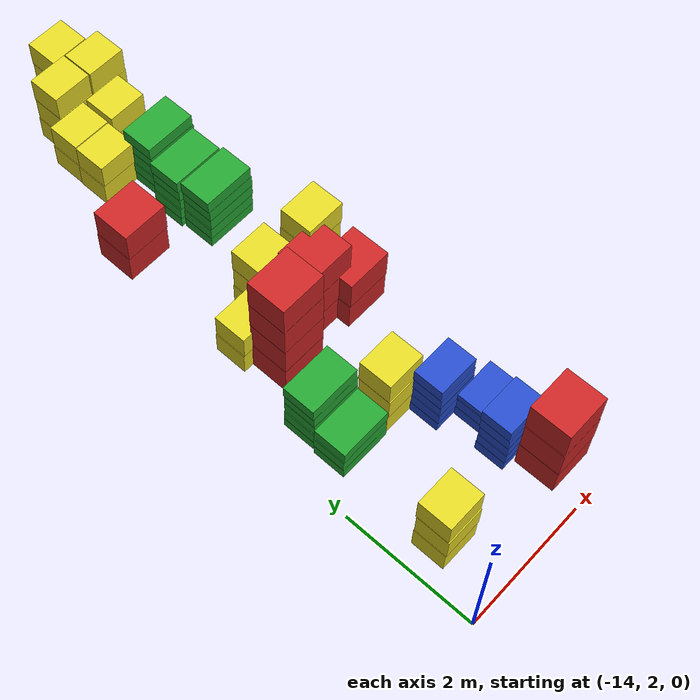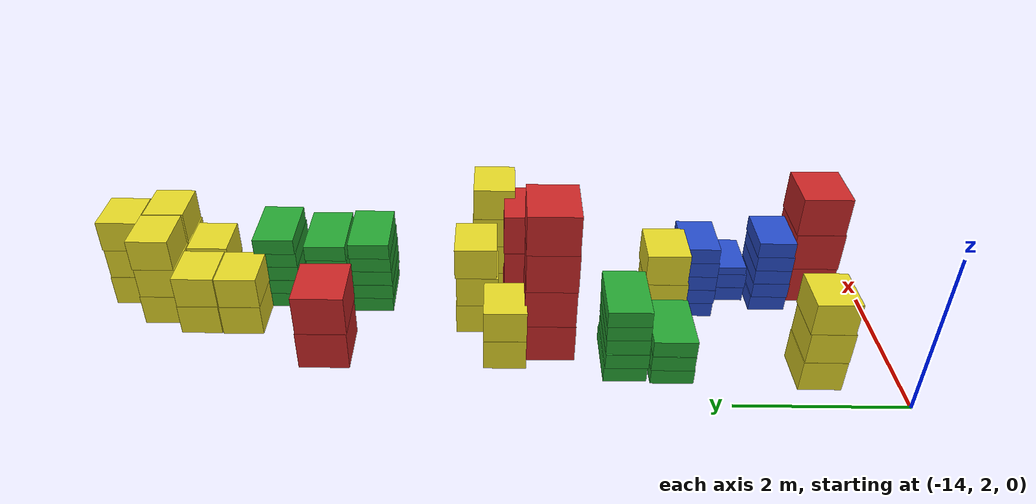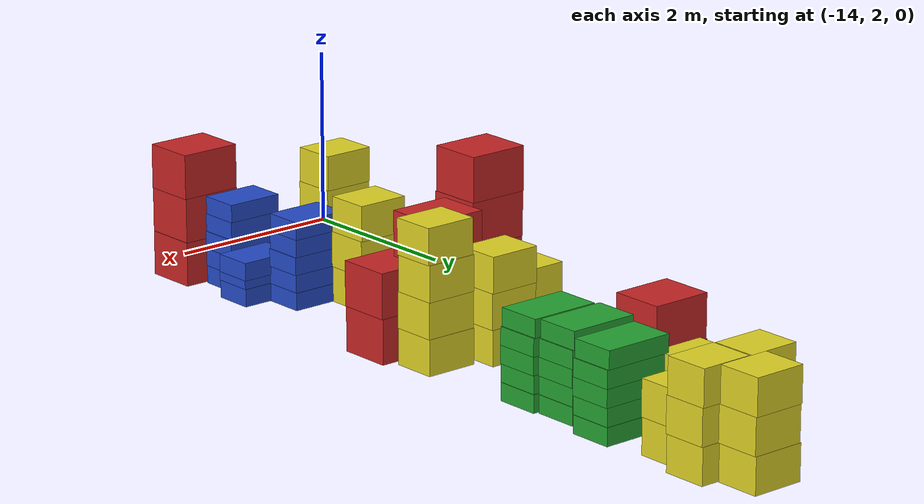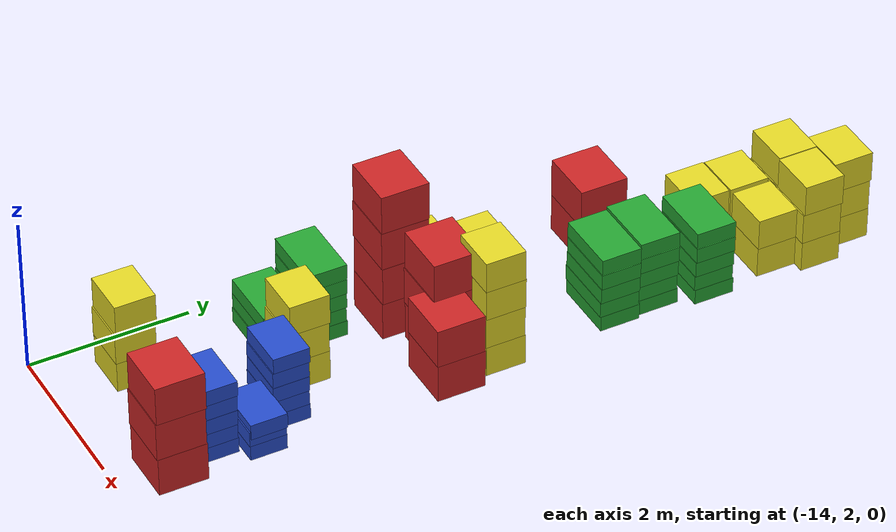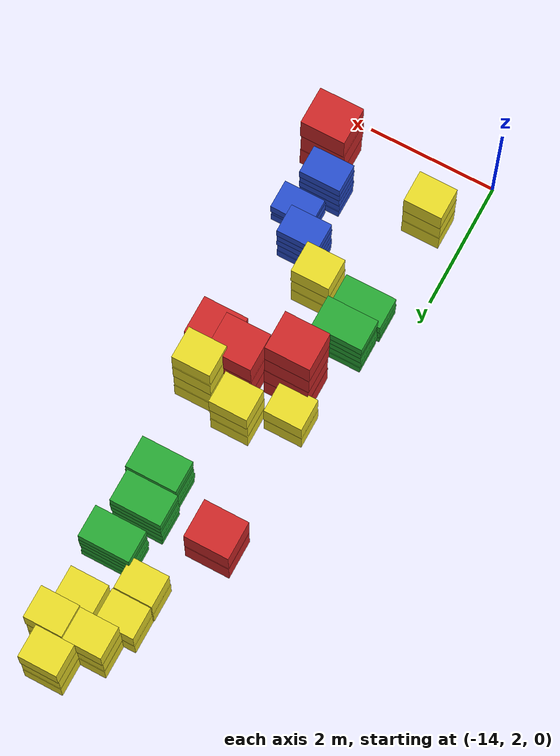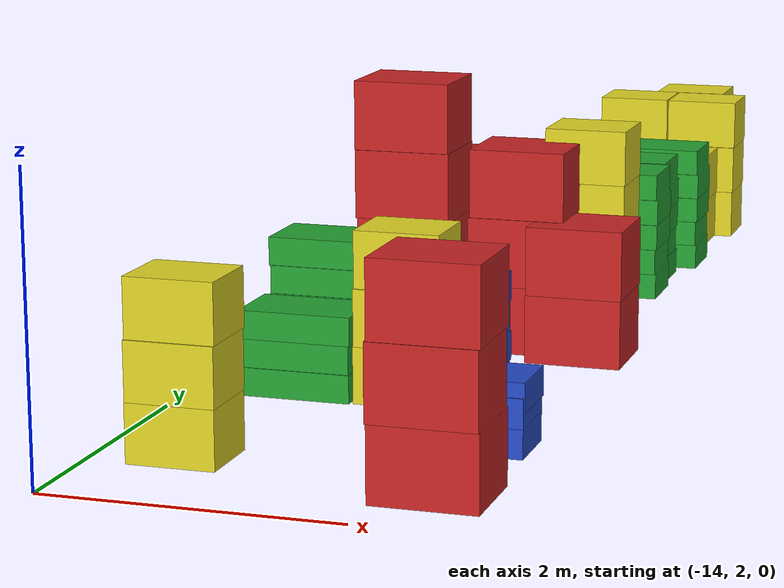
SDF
<sdf version="1.6">
 <world name="default">
  <include><uri>model://sun</uri></include>
  <model name="baggage_A_x3_6">
   <model name="baggage_A_0">
    <static>1</static>
    <link name="link">
     <collision name="collision"><geometry><box><size>0.7 0.6 0.5</size></box></geometry></collision>
     <visual name="visual">
      <geometry><box><size>0.7 0.6 0.5</size></box></geometry>
      <material>
       <script><uri>file://media/materials/scripts/gazebo.material</uri><name>Gazebo/Red</name></script>
      </material>
     </visual>
    </link>
    <pose>0 0 0.25 0 -0 0</pose>
   </model>
   <model name="baggage_A_1">
    <static>1</static>
    <link name="link">
     <collision name="collision"><geometry><box><size>0.7 0.6 0.5</size></box></geometry></collision>
     <visual name="visual">
      <geometry><box><size>0.7 0.6 0.5</size></box></geometry>
      <material>
       <script><uri>file://media/materials/scripts/gazebo.material</uri><name>Gazebo/Red</name></script>
      </material>
     </visual>
    </link>
    <pose>-0.006 -0.0077 0.75 0 -0 0</pose>
   </model>
   <model name="baggage_A_2">
    <static>1</static>
    <link name="link">
     <collision name="collision"><geometry><box><size>0.7 0.6 0.5</size></box></geometry></collision>
     <visual name="visual">
      <geometry><box><size>0.7 0.6 0.5</size></box></geometry>
      <material>
       <script><uri>file://media/materials/scripts/gazebo.material</uri><name>Gazebo/Red</name></script>
      </material>
     </visual>
    </link>
    <pose>0.0045 0.0005 1.25 0 -0 0</pose>
   </model>
   <pose>-11.6674 2.65733 0 0 -0 0</pose>
  </model>
  <model name="baggage_C_x3_3">
   <model name="baggage_C_0">
    <static>1</static>
    <link name="link">
     <collision name="collision"><geometry><box><size>0.6 0.5 0.4</size></box></geometry></collision>
     <visual name="visual">
      <geometry><box><size>0.6 0.5 0.4</size></box></geometry>
      <material>
       <script><uri>file://media/materials/scripts/gazebo.material</uri><name>Gazebo/Yellow</name></script>
      </material>
     </visual>
    </link>
    <pose>0 0 0.2 0 -0 0</pose>
   </model>
   <model name="baggage_C_1">
    <static>1</static>
    <link name="link">
     <collision name="collision"><geometry><box><size>0.6 0.5 0.4</size></box></geometry></collision>
     <visual name="visual">
      <geometry><box><size>0.6 0.5 0.4</size></box></geometry>
      <material>
       <script><uri>file://media/materials/scripts/gazebo.material</uri><name>Gazebo/Yellow</name></script>
      </material>
     </visual>
    </link>
    <pose>0.0062 -0.0069 0.6 0 -0 0</pose>
   </model>
   <model name="baggage_C_2">
    <static>1</static>
    <link name="link">
     <collision name="collision"><geometry><box><size>0.6 0.5 0.4</size></box></geometry></collision>
     <visual name="visual">
      <geometry><box><size>0.6 0.5 0.4</size></box></geometry>
      <material>
       <script><uri>file://media/materials/scripts/gazebo.material</uri><name>Gazebo/Yellow</name></script>
      </material>
     </visual>
    </link>
    <pose>0.0089 0.0083 1 0 -0 0</pose>
   </model>
   <pose>-13.4172 2.94838 0 0 -0 0</pose>
  </model>
  <model name="baggage_B_x5_8">
   <model name="baggage_B_0">
    <static>1</static>
    <link name="link">
     <collision name="collision"><geometry><box><size>0.65 0.45 0.2</size></box></geometry></collision>
     <visual name="visual">
      <geometry><box><size>0.65 0.45 0.2</size></box></geometry>
      <material>
       <script><uri>file://media/materials/scripts/gazebo.material</uri><name>Gazebo/Blue</name></script>
      </material>
     </visual>
    </link>
    <pose>0 0 0.1 0 -0 0</pose>
   </model>
   <model name="baggage_B_1">
    <static>1</static>
    <link name="link">
     <collision name="collision"><geometry><box><size>0.65 0.45 0.2</size></box></geometry></collision>
     <visual name="visual">
      <geometry><box><size>0.65 0.45 0.2</size></box></geometry>
      <material>
       <script><uri>file://media/materials/scripts/gazebo.material</uri><name>Gazebo/Blue</name></script>
      </material>
     </visual>
    </link>
    <pose>-0.0014 -0.0091 0.3 0 -0 0</pose>
   </model>
   <model name="baggage_B_2">
    <static>1</static>
    <link name="link">
     <collision name="collision"><geometry><box><size>0.65 0.45 0.2</size></box></geometry></collision>
     <visual name="visual">
      <geometry><box><size>0.65 0.45 0.2</size></box></geometry>
      <material>
       <script><uri>file://media/materials/scripts/gazebo.material</uri><name>Gazebo/Blue</name></script>
      </material>
     </visual>
    </link>
    <pose>0.0076 -0.0066 0.5 0 -0 0</pose>
   </model>
   <model name="baggage_B_3">
    <static>1</static>
    <link name="link">
     <collision name="collision"><geometry><box><size>0.65 0.45 0.2</size></box></geometry></collision>
     <visual name="visual">
      <geometry><box><size>0.65 0.45 0.2</size></box></geometry>
      <material>
       <script><uri>file://media/materials/scripts/gazebo.material</uri><name>Gazebo/Blue</name></script>
      </material>
     </visual>
    </link>
    <pose>0 -0.0032 0.7 0 -0 0</pose>
   </model>
   <model name="baggage_B_4">
    <static>1</static>
    <link name="link">
     <collision name="collision"><geometry><box><size>0.65 0.45 0.2</size></box></geometry></collision>
     <visual name="visual">
      <geometry><box><size>0.65 0.45 0.2</size></box></geometry>
      <material>
       <script><uri>file://media/materials/scripts/gazebo.material</uri><name>Gazebo/Blue</name></script>
      </material>
     </visual>
    </link>
    <pose>0.0023 0.0073 0.9 0 -0 0</pose>
   </model>
   <pose>-11.8901 3.21914 0 0 -0 0</pose>
  </model>
  <model name="baggage_B_x3_3">
   <model name="baggage_B_0">
    <static>1</static>
    <link name="link">
     <collision name="collision"><geometry><box><size>0.65 0.45 0.2</size></box></geometry></collision>
     <visual name="visual">
      <geometry><box><size>0.65 0.45 0.2</size></box></geometry>
      <material>
       <script><uri>file://media/materials/scripts/gazebo.material</uri><name>Gazebo/Blue</name></script>
      </material>
     </visual>
    </link>
    <pose>0 0 0.1 0 -0 0</pose>
   </model>
   <model name="baggage_B_1">
    <static>1</static>
    <link name="link">
     <collision name="collision"><geometry><box><size>0.65 0.45 0.2</size></box></geometry></collision>
     <visual name="visual">
      <geometry><box><size>0.65 0.45 0.2</size></box></geometry>
      <material>
       <script><uri>file://media/materials/scripts/gazebo.material</uri><name>Gazebo/Blue</name></script>
      </material>
     </visual>
    </link>
    <pose>0.0028 -0.0086 0.3 0 -0 0</pose>
   </model>
   <model name="baggage_B_2">
    <static>1</static>
    <link name="link">
     <collision name="collision"><geometry><box><size>0.65 0.45 0.2</size></box></geometry></collision>
     <visual name="visual">
      <geometry><box><size>0.65 0.45 0.2</size></box></geometry>
      <material>
       <script><uri>file://media/materials/scripts/gazebo.material</uri><name>Gazebo/Blue</name></script>
      </material>
     </visual>
    </link>
    <pose>0.0092 0.006 0.4 0 -0 0</pose>
   </model>
   <pose>-11.6939 3.71424 0 0 -0 0</pose>
  </model>
  <model name="baggage_B_x5_9">
   <model name="baggage_B_0">
    <static>1</static>
    <link name="link">
     <collision name="collision"><geometry><box><size>0.65 0.45 0.2</size></box></geometry></collision>
     <visual name="visual">
      <geometry><box><size>0.65 0.45 0.2</size></box></geometry>
      <material>
       <script><uri>file://media/materials/scripts/gazebo.material</uri><name>Gazebo/Blue</name></script>
      </material>
     </visual>
    </link>
    <pose>0 0 0.1 0 -0 0</pose>
   </model>
   <model name="baggage_B_1">
    <static>1</static>
    <link name="link">
     <collision name="collision"><geometry><box><size>0.65 0.45 0.2</size></box></geometry></collision>
     <visual name="visual">
      <geometry><box><size>0.65 0.45 0.2</size></box></geometry>
      <material>
       <script><uri>file://media/materials/scripts/gazebo.material</uri><name>Gazebo/Blue</name></script>
      </material>
     </visual>
    </link>
    <pose>-0.0014 -0.0091 0.3 0 -0 0</pose>
   </model>
   <model name="baggage_B_2">
    <static>1</static>
    <link name="link">
     <collision name="collision"><geometry><box><size>0.65 0.45 0.2</size></box></geometry></collision>
     <visual name="visual">
      <geometry><box><size>0.65 0.45 0.2</size></box></geometry>
      <material>
       <script><uri>file://media/materials/scripts/gazebo.material</uri><name>Gazebo/Blue</name></script>
      </material>
     </visual>
    </link>
    <pose>0.0076 -0.0066 0.5 0 -0 0</pose>
   </model>
   <model name="baggage_B_3">
    <static>1</static>
    <link name="link">
     <collision name="collision"><geometry><box><size>0.65 0.45 0.2</size></box></geometry></collision>
     <visual name="visual">
      <geometry><box><size>0.65 0.45 0.2</size></box></geometry>
      <material>
       <script><uri>file://media/materials/scripts/gazebo.material</uri><name>Gazebo/Blue</name></script>
      </material>
     </visual>
    </link>
    <pose>0 -0.0032 0.7 0 -0 0</pose>
   </model>
   <model name="baggage_B_4">
    <static>1</static>
    <link name="link">
     <collision name="collision"><geometry><box><size>0.65 0.45 0.2</size></box></geometry></collision>
     <visual name="visual">
      <geometry><box><size>0.65 0.45 0.2</size></box></geometry>
      <material>
       <script><uri>file://media/materials/scripts/gazebo.material</uri><name>Gazebo/Blue</name></script>
      </material>
     </visual>
    </link>
    <pose>0.0023 0.0073 0.9 0 -0 0</pose>
   </model>
   <pose>-12.0327 4.17077 0 0 -0 0</pose>
  </model>
  <model name="baggage_C_x3_4">
   <model name="baggage_C_0">
    <static>1</static>
    <link name="link">
     <collision name="collision"><geometry><box><size>0.6 0.5 0.4</size></box></geometry></collision>
     <visual name="visual">
      <geometry><box><size>0.6 0.5 0.4</size></box></geometry>
      <material>
       <script><uri>file://media/materials/scripts/gazebo.material</uri><name>Gazebo/Yellow</name></script>
      </material>
     </visual>
    </link>
    <pose>0 0 0.2 0 -0 0</pose>
   </model>
   <model name="baggage_C_1">
    <static>1</static>
    <link name="link">
     <collision name="collision"><geometry><box><size>0.6 0.5 0.4</size></box></geometry></collision>
     <visual name="visual">
      <geometry><box><size>0.6 0.5 0.4</size></box></geometry>
      <material>
       <script><uri>file://media/materials/scripts/gazebo.material</uri><name>Gazebo/Yellow</name></script>
      </material>
     </visual>
    </link>
    <pose>0.0062 -0.0069 0.6 0 -0 0</pose>
   </model>
   <model name="baggage_C_2">
    <static>1</static>
    <link name="link">
     <collision name="collision"><geometry><box><size>0.6 0.5 0.4</size></box></geometry></collision>
     <visual name="visual">
      <geometry><box><size>0.6 0.5 0.4</size></box></geometry>
      <material>
       <script><uri>file://media/materials/scripts/gazebo.material</uri><name>Gazebo/Yellow</name></script>
      </material>
     </visual>
    </link>
    <pose>0.0089 0.0083 1 0 -0 0</pose>
   </model>
   <pose>-12.5123 4.64712 0 0 -0 0</pose>
  </model>
  <model name="baggage_D_x3_4">
   <model name="baggage_D_0">
    <static>1</static>
    <link name="link">
     <collision name="collision"><geometry><box><size>0.8 0.5 0.2</size></box></geometry></collision>
     <visual name="visual">
      <geometry><box><size>0.8 0.5 0.2</size></box></geometry>
      <material>
       <script><uri>file://media/materials/scripts/gazebo.material</uri><name>Gazebo/Green</name></script>
      </material>
     </visual>
    </link>
    <pose>0 0 0.1 0 -0 0</pose>
   </model>
   <model name="baggage_D_1">
    <static>1</static>
    <link name="link">
     <collision name="collision"><geometry><box><size>0.8 0.5 0.2</size></box></geometry></collision>
     <visual name="visual">
      <geometry><box><size>0.8 0.5 0.2</size></box></geometry>
      <material>
       <script><uri>file://media/materials/scripts/gazebo.material</uri><name>Gazebo/Green</name></script>
      </material>
     </visual>
    </link>
    <pose>-0.0056 0.0083 0.3 0 -0 0</pose>
   </model>
   <model name="baggage_D_2">
    <static>1</static>
    <link name="link">
     <collision name="collision"><geometry><box><size>0.8 0.5 0.2</size></box></geometry></collision>
     <visual name="visual">
      <geometry><box><size>0.8 0.5 0.2</size></box></geometry>
      <material>
       <script><uri>file://media/materials/scripts/gazebo.material</uri><name>Gazebo/Green</name></script>
      </material>
     </visual>
    </link>
    <pose>0.0053 0.0057 0.5 0 -0 0</pose>
   </model>
   <pose>-13.2351 4.62581 0 0 -0 0</pose>
  </model>
  <model name="baggage_D_x5_6">
   <model name="baggage_D_0">
    <static>1</static>
    <link name="link">
     <collision name="collision"><geometry><box><size>0.8 0.5 0.2</size></box></geometry></collision>
     <visual name="visual">
      <geometry><box><size>0.8 0.5 0.2</size></box></geometry>
      <material>
       <script><uri>file://media/materials/scripts/gazebo.material</uri><name>Gazebo/Green</name></script>
      </material>
     </visual>
    </link>
    <pose>0 0 0.1 0 -0 0</pose>
   </model>
   <model name="baggage_D_1">
    <static>1</static>
    <link name="link">
     <collision name="collision"><geometry><box><size>0.8 0.5 0.2</size></box></geometry></collision>
     <visual name="visual">
      <geometry><box><size>0.8 0.5 0.2</size></box></geometry>
      <material>
       <script><uri>file://media/materials/scripts/gazebo.material</uri><name>Gazebo/Green</name></script>
      </material>
     </visual>
    </link>
    <pose>-0.0065 -0.0092 0.3 0 -0 0</pose>
   </model>
   <model name="baggage_D_2">
    <static>1</static>
    <link name="link">
     <collision name="collision"><geometry><box><size>0.8 0.5 0.2</size></box></geometry></collision>
     <visual name="visual">
      <geometry><box><size>0.8 0.5 0.2</size></box></geometry>
      <material>
       <script><uri>file://media/materials/scripts/gazebo.material</uri><name>Gazebo/Green</name></script>
      </material>
     </visual>
    </link>
    <pose>0.005 -0.0052 0.5 0 -0 0</pose>
   </model>
   <model name="baggage_D_3">
    <static>1</static>
    <link name="link">
     <collision name="collision"><geometry><box><size>0.8 0.5 0.2</size></box></geometry></collision>
     <visual name="visual">
      <geometry><box><size>0.8 0.5 0.2</size></box></geometry>
      <material>
       <script><uri>file://media/materials/scripts/gazebo.material</uri><name>Gazebo/Green</name></script>
      </material>
     </visual>
    </link>
    <pose>0.0074 0.0002 0.7 0 -0 0</pose>
   </model>
   <model name="baggage_D_4">
    <static>1</static>
    <link name="link">
     <collision name="collision"><geometry><box><size>0.8 0.5 0.2</size></box></geometry></collision>
     <visual name="visual">
      <geometry><box><size>0.8 0.5 0.2</size></box></geometry>
      <material>
       <script><uri>file://media/materials/scripts/gazebo.material</uri><name>Gazebo/Green</name></script>
      </material>
     </visual>
    </link>
    <pose>-0.006 0.0081 0.9 0 -0 0</pose>
   </model>
   <pose>-13.204 5.1654 0 0 -0 0</pose>
  </model>
  <model name="baggage_C_x3_6">
   <model name="baggage_C_0">
    <static>1</static>
    <link name="link">
     <collision name="collision"><geometry><box><size>0.6 0.5 0.4</size></box></geometry></collision>
     <visual name="visual">
      <geometry><box><size>0.6 0.5 0.4</size></box></geometry>
      <material>
       <script><uri>file://media/materials/scripts/gazebo.material</uri><name>Gazebo/Yellow</name></script>
      </material>
     </visual>
    </link>
    <pose>0 0 0.2 0 -0 0</pose>
   </model>
   <model name="baggage_C_1">
    <static>1</static>
    <link name="link">
     <collision name="collision"><geometry><box><size>0.6 0.5 0.4</size></box></geometry></collision>
     <visual name="visual">
      <geometry><box><size>0.6 0.5 0.4</size></box></geometry>
      <material>
       <script><uri>file://media/materials/scripts/gazebo.material</uri><name>Gazebo/Yellow</name></script>
      </material>
     </visual>
    </link>
    <pose>0.0062 -0.0069 0.6 0 -0 0</pose>
   </model>
   <model name="baggage_C_2">
    <static>1</static>
    <link name="link">
     <collision name="collision"><geometry><box><size>0.6 0.5 0.4</size></box></geometry></collision>
     <visual name="visual">
      <geometry><box><size>0.6 0.5 0.4</size></box></geometry>
      <material>
       <script><uri>file://media/materials/scripts/gazebo.material</uri><name>Gazebo/Yellow</name></script>
      </material>
     </visual>
    </link>
    <pose>0.0089 0.0083 1 0 -0 0</pose>
   </model>
   <pose>-11.8892 11.2923 0 0 -0 0</pose>
  </model>
  <model name="baggage_D_x5_8">
   <model name="baggage_D_0">
    <static>1</static>
    <link name="link">
     <collision name="collision"><geometry><box><size>0.8 0.5 0.2</size></box></geometry></collision>
     <visual name="visual">
      <geometry><box><size>0.8 0.5 0.2</size></box></geometry>
      <material>
       <script><uri>file://media/materials/scripts/gazebo.material</uri><name>Gazebo/Green</name></script>
      </material>
     </visual>
    </link>
    <pose>0 0 0.1 0 -0 0</pose>
   </model>
   <model name="baggage_D_1">
    <static>1</static>
    <link name="link">
     <collision name="collision"><geometry><box><size>0.8 0.5 0.2</size></box></geometry></collision>
     <visual name="visual">
      <geometry><box><size>0.8 0.5 0.2</size></box></geometry>
      <material>
       <script><uri>file://media/materials/scripts/gazebo.material</uri><name>Gazebo/Green</name></script>
      </material>
     </visual>
    </link>
    <pose>-0.0065 -0.0092 0.3 0 -0 0</pose>
   </model>
   <model name="baggage_D_2">
    <static>1</static>
    <link name="link">
     <collision name="collision"><geometry><box><size>0.8 0.5 0.2</size></box></geometry></collision>
     <visual name="visual">
      <geometry><box><size>0.8 0.5 0.2</size></box></geometry>
      <material>
       <script><uri>file://media/materials/scripts/gazebo.material</uri><name>Gazebo/Green</name></script>
      </material>
     </visual>
    </link>
    <pose>0.005 -0.0052 0.5 0 -0 0</pose>
   </model>
   <model name="baggage_D_3">
    <static>1</static>
    <link name="link">
     <collision name="collision"><geometry><box><size>0.8 0.5 0.2</size></box></geometry></collision>
     <visual name="visual">
      <geometry><box><size>0.8 0.5 0.2</size></box></geometry>
      <material>
       <script><uri>file://media/materials/scripts/gazebo.material</uri><name>Gazebo/Green</name></script>
      </material>
     </visual>
    </link>
    <pose>0.0074 0.0002 0.7 0 -0 0</pose>
   </model>
   <model name="baggage_D_4">
    <static>1</static>
    <link name="link">
     <collision name="collision"><geometry><box><size>0.8 0.5 0.2</size></box></geometry></collision>
     <visual name="visual">
      <geometry><box><size>0.8 0.5 0.2</size></box></geometry>
      <material>
       <script><uri>file://media/materials/scripts/gazebo.material</uri><name>Gazebo/Green</name></script>
      </material>
     </visual>
    </link>
    <pose>-0.006 0.0081 0.9 0 -0 0</pose>
   </model>
   <pose>-11.8235 9.39654 0 0 -0 0</pose>
  </model>
  <model name="baggage_C_x3_7">
   <model name="baggage_C_0">
    <static>1</static>
    <link name="link">
     <collision name="collision"><geometry><box><size>0.6 0.5 0.4</size></box></geometry></collision>
     <visual name="visual">
      <geometry><box><size>0.6 0.5 0.4</size></box></geometry>
      <material>
       <script><uri>file://media/materials/scripts/gazebo.material</uri><name>Gazebo/Yellow</name></script>
      </material>
     </visual>
    </link>
    <pose>0 0 0.2 0 -0 0</pose>
   </model>
   <model name="baggage_C_1">
    <static>1</static>
    <link name="link">
     <collision name="collision"><geometry><box><size>0.6 0.5 0.4</size></box></geometry></collision>
     <visual name="visual">
      <geometry><box><size>0.6 0.5 0.4</size></box></geometry>
      <material>
       <script><uri>file://media/materials/scripts/gazebo.material</uri><name>Gazebo/Yellow</name></script>
      </material>
     </visual>
    </link>
    <pose>0.0062 -0.0069 0.6 0 -0 0</pose>
   </model>
   <model name="baggage_C_2">
    <static>1</static>
    <link name="link">
     <collision name="collision"><geometry><box><size>0.6 0.5 0.4</size></box></geometry></collision>
     <visual name="visual">
      <geometry><box><size>0.6 0.5 0.4</size></box></geometry>
      <material>
       <script><uri>file://media/materials/scripts/gazebo.material</uri><name>Gazebo/Yellow</name></script>
      </material>
     </visual>
    </link>
    <pose>0.0089 0.0083 1 0 -0 0</pose>
   </model>
   <pose>-11.6823 10.7803 0 0 -0 0</pose>
  </model>
  <model name="baggage_C_x2_3">
   <model name="baggage_C_0">
    <static>1</static>
    <link name="link">
     <collision name="collision"><geometry><box><size>0.6 0.5 0.4</size></box></geometry></collision>
     <visual name="visual">
      <geometry><box><size>0.6 0.5 0.4</size></box></geometry>
      <material>
       <script><uri>file://media/materials/scripts/gazebo.material</uri><name>Gazebo/Yellow</name></script>
      </material>
     </visual>
    </link>
    <pose>0 0 0.2 0 -0 0</pose>
   </model>
   <model name="baggage_C_1">
    <static>1</static>
    <link name="link">
     <collision name="collision"><geometry><box><size>0.6 0.5 0.4</size></box></geometry></collision>
     <visual name="visual">
      <geometry><box><size>0.6 0.5 0.4</size></box></geometry>
      <material>
       <script><uri>file://media/materials/scripts/gazebo.material</uri><name>Gazebo/Yellow</name></script>
      </material>
     </visual>
    </link>
    <pose>0.0093 -0.002 0.6 0 -0 0</pose>
   </model>
   <pose>-11.8284 10.2777 0 0 -0 0</pose>
  </model>
  <model name="baggage_C_x3_8">
   <model name="baggage_C_0">
    <static>1</static>
    <link name="link">
     <collision name="collision"><geometry><box><size>0.6 0.5 0.4</size></box></geometry></collision>
     <visual name="visual">
      <geometry><box><size>0.6 0.5 0.4</size></box></geometry>
      <material>
       <script><uri>file://media/materials/scripts/gazebo.material</uri><name>Gazebo/Yellow</name></script>
      </material>
     </visual>
    </link>
    <pose>0 0 0.2 0 -0 0</pose>
   </model>
   <model name="baggage_C_1">
    <static>1</static>
    <link name="link">
     <collision name="collision"><geometry><box><size>0.6 0.5 0.4</size></box></geometry></collision>
     <visual name="visual">
      <geometry><box><size>0.6 0.5 0.4</size></box></geometry>
      <material>
       <script><uri>file://media/materials/scripts/gazebo.material</uri><name>Gazebo/Yellow</name></script>
      </material>
     </visual>
    </link>
    <pose>0.0062 -0.0069 0.6 0 -0 0</pose>
   </model>
   <model name="baggage_C_2">
    <static>1</static>
    <link name="link">
     <collision name="collision"><geometry><box><size>0.6 0.5 0.4</size></box></geometry></collision>
     <visual name="visual">
      <geometry><box><size>0.6 0.5 0.4</size></box></geometry>
      <material>
       <script><uri>file://media/materials/scripts/gazebo.material</uri><name>Gazebo/Yellow</name></script>
      </material>
     </visual>
    </link>
    <pose>0.0089 0.0083 1 0 -0 0</pose>
   </model>
   <pose>-12.2968 10.7942 0 0 -0 0</pose>
  </model>
  <model name="baggage_C_x2_4">
   <model name="baggage_C_0">
    <static>1</static>
    <link name="link">
     <collision name="collision"><geometry><box><size>0.6 0.5 0.4</size></box></geometry></collision>
     <visual name="visual">
      <geometry><box><size>0.6 0.5 0.4</size></box></geometry>
      <material>
       <script><uri>file://media/materials/scripts/gazebo.material</uri><name>Gazebo/Yellow</name></script>
      </material>
     </visual>
    </link>
    <pose>0 0 0.2 0 -0 0</pose>
   </model>
   <model name="baggage_C_1">
    <static>1</static>
    <link name="link">
     <collision name="collision"><geometry><box><size>0.6 0.5 0.4</size></box></geometry></collision>
     <visual name="visual">
      <geometry><box><size>0.6 0.5 0.4</size></box></geometry>
      <material>
       <script><uri>file://media/materials/scripts/gazebo.material</uri><name>Gazebo/Yellow</name></script>
      </material>
     </visual>
    </link>
    <pose>0.0093 -0.002 0.6 0 -0 0</pose>
   </model>
   <pose>-12.4871 10.2856 0 0 -0 0</pose>
  </model>
  <model name="baggage_C_x2_5">
   <model name="baggage_C_0">
    <static>1</static>
    <link name="link">
     <collision name="collision"><geometry><box><size>0.6 0.5 0.4</size></box></geometry></collision>
     <visual name="visual">
      <geometry><box><size>0.6 0.5 0.4</size></box></geometry>
      <material>
       <script><uri>file://media/materials/scripts/gazebo.material</uri><name>Gazebo/Yellow</name></script>
      </material>
     </visual>
    </link>
    <pose>0 0 0.2 0 -0 0</pose>
   </model>
   <model name="baggage_C_1">
    <static>1</static>
    <link name="link">
     <collision name="collision"><geometry><box><size>0.6 0.5 0.4</size></box></geometry></collision>
     <visual name="visual">
      <geometry><box><size>0.6 0.5 0.4</size></box></geometry>
      <material>
       <script><uri>file://media/materials/scripts/gazebo.material</uri><name>Gazebo/Yellow</name></script>
      </material>
     </visual>
    </link>
    <pose>0.0093 -0.002 0.6 0 -0 0</pose>
   </model>
   <pose>-12.4953 9.77218 0 0 -0 0</pose>
  </model>
  <model name="baggage_A_x2_4">
   <model name="baggage_A_0">
    <static>1</static>
    <link name="link">
     <collision name="collision"><geometry><box><size>0.7 0.6 0.5</size></box></geometry></collision>
     <visual name="visual">
      <geometry><box><size>0.7 0.6 0.5</size></box></geometry>
      <material>
       <script><uri>file://media/materials/scripts/gazebo.material</uri><name>Gazebo/Red</name></script>
      </material>
     </visual>
    </link>
    <pose>0 0 0.25 0 -0 0</pose>
   </model>
   <model name="baggage_A_1">
    <static>1</static>
    <link name="link">
     <collision name="collision"><geometry><box><size>0.7 0.6 0.5</size></box></geometry></collision>
     <visual name="visual">
      <geometry><box><size>0.7 0.6 0.5</size></box></geometry>
      <material>
       <script><uri>file://media/materials/scripts/gazebo.material</uri><name>Gazebo/Red</name></script>
      </material>
     </visual>
    </link>
    <pose>0.0063 -0.0062 0.75 0 -0 0</pose>
   </model>
   <pose>-13.0667 8.67794 0 0 -0 0</pose>
  </model>
  <model name="baggage_D_x5_9">
   <model name="baggage_D_0">
    <static>1</static>
    <link name="link">
     <collision name="collision"><geometry><box><size>0.8 0.5 0.2</size></box></geometry></collision>
     <visual name="visual">
      <geometry><box><size>0.8 0.5 0.2</size></box></geometry>
      <material>
       <script><uri>file://media/materials/scripts/gazebo.material</uri><name>Gazebo/Green</name></script>
      </material>
     </visual>
    </link>
    <pose>0 0 0.1 0 -0 0</pose>
   </model>
   <model name="baggage_D_1">
    <static>1</static>
    <link name="link">
     <collision name="collision"><geometry><box><size>0.8 0.5 0.2</size></box></geometry></collision>
     <visual name="visual">
      <geometry><box><size>0.8 0.5 0.2</size></box></geometry>
      <material>
       <script><uri>file://media/materials/scripts/gazebo.material</uri><name>Gazebo/Green</name></script>
      </material>
     </visual>
    </link>
    <pose>-0.0065 -0.0092 0.3 0 -0 0</pose>
   </model>
   <model name="baggage_D_2">
    <static>1</static>
    <link name="link">
     <collision name="collision"><geometry><box><size>0.8 0.5 0.2</size></box></geometry></collision>
     <visual name="visual">
      <geometry><box><size>0.8 0.5 0.2</size></box></geometry>
      <material>
       <script><uri>file://media/materials/scripts/gazebo.material</uri><name>Gazebo/Green</name></script>
      </material>
     </visual>
    </link>
    <pose>0.005 -0.0052 0.5 0 -0 0</pose>
   </model>
   <model name="baggage_D_3">
    <static>1</static>
    <link name="link">
     <collision name="collision"><geometry><box><size>0.8 0.5 0.2</size></box></geometry></collision>
     <visual name="visual">
      <geometry><box><size>0.8 0.5 0.2</size></box></geometry>
      <material>
       <script><uri>file://media/materials/scripts/gazebo.material</uri><name>Gazebo/Green</name></script>
      </material>
     </visual>
    </link>
    <pose>0.0074 0.0002 0.7 0 -0 0</pose>
   </model>
   <model name="baggage_D_4">
    <static>1</static>
    <link name="link">
     <collision name="collision"><geometry><box><size>0.8 0.5 0.2</size></box></geometry></collision>
     <visual name="visual">
      <geometry><box><size>0.8 0.5 0.2</size></box></geometry>
      <material>
       <script><uri>file://media/materials/scripts/gazebo.material</uri><name>Gazebo/Green</name></script>
      </material>
     </visual>
    </link>
    <pose>-0.006 0.0081 0.9 0 -0 0</pose>
   </model>
   <pose>-11.9564 8.74261 0 0 -0 0</pose>
  </model>
  <model name="baggage_D_x5_10">
   <model name="baggage_D_0">
    <static>1</static>
    <link name="link">
     <collision name="collision"><geometry><box><size>0.8 0.5 0.2</size></box></geometry></collision>
     <visual name="visual">
      <geometry><box><size>0.8 0.5 0.2</size></box></geometry>
      <material>
       <script><uri>file://media/materials/scripts/gazebo.material</uri><name>Gazebo/Green</name></script>
      </material>
     </visual>
    </link>
    <pose>0 0 0.1 0 -0 0</pose>
   </model>
   <model name="baggage_D_1">
    <static>1</static>
    <link name="link">
     <collision name="collision"><geometry><box><size>0.8 0.5 0.2</size></box></geometry></collision>
     <visual name="visual">
      <geometry><box><size>0.8 0.5 0.2</size></box></geometry>
      <material>
       <script><uri>file://media/materials/scripts/gazebo.material</uri><name>Gazebo/Green</name></script>
      </material>
     </visual>
    </link>
    <pose>-0.0065 -0.0092 0.3 0 -0 0</pose>
   </model>
   <model name="baggage_D_2">
    <static>1</static>
    <link name="link">
     <collision name="collision"><geometry><box><size>0.8 0.5 0.2</size></box></geometry></collision>
     <visual name="visual">
      <geometry><box><size>0.8 0.5 0.2</size></box></geometry>
      <material>
       <script><uri>file://media/materials/scripts/gazebo.material</uri><name>Gazebo/Green</name></script>
      </material>
     </visual>
    </link>
    <pose>0.005 -0.0052 0.5 0 -0 0</pose>
   </model>
   <model name="baggage_D_3">
    <static>1</static>
    <link name="link">
     <collision name="collision"><geometry><box><size>0.8 0.5 0.2</size></box></geometry></collision>
     <visual name="visual">
      <geometry><box><size>0.8 0.5 0.2</size></box></geometry>
      <material>
       <script><uri>file://media/materials/scripts/gazebo.material</uri><name>Gazebo/Green</name></script>
      </material>
     </visual>
    </link>
    <pose>0.0074 0.0002 0.7 0 -0 0</pose>
   </model>
   <model name="baggage_D_4">
    <static>1</static>
    <link name="link">
     <collision name="collision"><geometry><box><size>0.8 0.5 0.2</size></box></geometry></collision>
     <visual name="visual">
      <geometry><box><size>0.8 0.5 0.2</size></box></geometry>
      <material>
       <script><uri>file://media/materials/scripts/gazebo.material</uri><name>Gazebo/Green</name></script>
      </material>
     </visual>
    </link>
    <pose>-0.006 0.0081 0.9 0 -0 0</pose>
   </model>
   <pose>-11.9091 8.21599 0 0 -0 0</pose>
  </model>
  <model name="baggage_A_x4_1">
   <model name="baggage_A_0">
    <static>1</static>
    <link name="link">
     <collision name="collision"><geometry><box><size>0.7 0.6 0.5</size></box></geometry></collision>
     <visual name="visual">
      <geometry><box><size>0.7 0.6 0.5</size></box></geometry>
      <material>
       <script><uri>file://media/materials/scripts/gazebo.material</uri><name>Gazebo/Red</name></script>
      </material>
     </visual>
    </link>
    <pose>0 0 0.25 0 -0 0</pose>
   </model>
   <model name="baggage_A_1">
    <static>1</static>
    <link name="link">
     <collision name="collision"><geometry><box><size>0.7 0.6 0.5</size></box></geometry></collision>
     <visual name="visual">
      <geometry><box><size>0.7 0.6 0.5</size></box></geometry>
      <material>
       <script><uri>file://media/materials/scripts/gazebo.material</uri><name>Gazebo/Red</name></script>
      </material>
     </visual>
    </link>
    <pose>0.0053 0.0033 0.75 0 -0 0</pose>
   </model>
   <model name="baggage_A_2">
    <static>1</static>
    <link name="link">
     <collision name="collision"><geometry><box><size>0.7 0.6 0.5</size></box></geometry></collision>
     <visual name="visual">
      <geometry><box><size>0.7 0.6 0.5</size></box></geometry>
      <material>
       <script><uri>file://media/materials/scripts/gazebo.material</uri><name>Gazebo/Red</name></script>
      </material>
     </visual>
    </link>
    <pose>-0.0056 -0.0003 1.25 0 -0 0</pose>
   </model>
   <model name="baggage_A_3">
    <static>1</static>
    <link name="link">
     <collision name="collision"><geometry><box><size>0.7 0.6 0.5</size></box></geometry></collision>
     <visual name="visual">
      <geometry><box><size>0.7 0.6 0.5</size></box></geometry>
      <material>
       <script><uri>file://media/materials/scripts/gazebo.material</uri><name>Gazebo/Red</name></script>
      </material>
     </visual>
    </link>
    <pose>-0.0098 0.0065 1.75 0 -0 0</pose>
   </model>
   <pose>-12.8917 6.0254 0 0 -0 0</pose>
  </model>
  <model name="baggage_A_x3_12">
   <model name="baggage_A_0">
    <static>1</static>
    <link name="link">
     <collision name="collision"><geometry><box><size>0.7 0.6 0.5</size></box></geometry></collision>
     <visual name="visual">
      <geometry><box><size>0.7 0.6 0.5</size></box></geometry>
      <material>
       <script><uri>file://media/materials/scripts/gazebo.material</uri><name>Gazebo/Red</name></script>
      </material>
     </visual>
    </link>
    <pose>0 0 0.25 0 -0 0</pose>
   </model>
   <model name="baggage_A_1">
    <static>1</static>
    <link name="link">
     <collision name="collision"><geometry><box><size>0.7 0.6 0.5</size></box></geometry></collision>
     <visual name="visual">
      <geometry><box><size>0.7 0.6 0.5</size></box></geometry>
      <material>
       <script><uri>file://media/materials/scripts/gazebo.material</uri><name>Gazebo/Red</name></script>
      </material>
     </visual>
    </link>
    <pose>-0.006 -0.0077 0.75 0 -0 0</pose>
   </model>
   <model name="baggage_A_2">
    <static>1</static>
    <link name="link">
     <collision name="collision"><geometry><box><size>0.7 0.6 0.5</size></box></geometry></collision>
     <visual name="visual">
      <geometry><box><size>0.7 0.6 0.5</size></box></geometry>
      <material>
       <script><uri>file://media/materials/scripts/gazebo.material</uri><name>Gazebo/Red</name></script>
      </material>
     </visual>
    </link>
    <pose>0.0045 0.0005 1.25 0 -0 0</pose>
   </model>
   <pose>-12.1162 6.27226 0 0 -0 0</pose>
  </model>
  <model name="baggage_C_x2_7">
   <model name="baggage_C_0">
    <static>1</static>
    <link name="link">
     <collision name="collision"><geometry><box><size>0.6 0.5 0.4</size></box></geometry></collision>
     <visual name="visual">
      <geometry><box><size>0.6 0.5 0.4</size></box></geometry>
      <material>
       <script><uri>file://media/materials/scripts/gazebo.material</uri><name>Gazebo/Yellow</name></script>
      </material>
     </visual>
    </link>
    <pose>0 0 0.2 0 -0 0</pose>
   </model>
   <model name="baggage_C_1">
    <static>1</static>
    <link name="link">
     <collision name="collision"><geometry><box><size>0.6 0.5 0.4</size></box></geometry></collision>
     <visual name="visual">
      <geometry><box><size>0.6 0.5 0.4</size></box></geometry>
      <material>
       <script><uri>file://media/materials/scripts/gazebo.material</uri><name>Gazebo/Yellow</name></script>
      </material>
     </visual>
    </link>
    <pose>0.0093 -0.002 0.6 0 -0 0</pose>
   </model>
   <pose>-13.0994 6.55326 0 0 -0 0</pose>
  </model>
  <model name="baggage_C_x3_11">
   <model name="baggage_C_0">
    <static>1</static>
    <link name="link">
     <collision name="collision"><geometry><box><size>0.6 0.5 0.4</size></box></geometry></collision>
     <visual name="visual">
      <geometry><box><size>0.6 0.5 0.4</size></box></geometry>
      <material>
       <script><uri>file://media/materials/scripts/gazebo.material</uri><name>Gazebo/Yellow</name></script>
      </material>
     </visual>
    </link>
    <pose>0 0 0.2 0 -0 0</pose>
   </model>
   <model name="baggage_C_1">
    <static>1</static>
    <link name="link">
     <collision name="collision"><geometry><box><size>0.6 0.5 0.4</size></box></geometry></collision>
     <visual name="visual">
      <geometry><box><size>0.6 0.5 0.4</size></box></geometry>
      <material>
       <script><uri>file://media/materials/scripts/gazebo.material</uri><name>Gazebo/Yellow</name></script>
      </material>
     </visual>
    </link>
    <pose>0.0062 -0.0069 0.6 0 -0 0</pose>
   </model>
   <model name="baggage_C_2">
    <static>1</static>
    <link name="link">
     <collision name="collision"><geometry><box><size>0.6 0.5 0.4</size></box></geometry></collision>
     <visual name="visual">
      <geometry><box><size>0.6 0.5 0.4</size></box></geometry>
      <material>
       <script><uri>file://media/materials/scripts/gazebo.material</uri><name>Gazebo/Yellow</name></script>
      </material>
     </visual>
    </link>
    <pose>0.0089 0.0083 1 0 -0 0</pose>
   </model>
   <pose>-12.4205 6.89482 0 0 -0 0</pose>
  </model>
  <model name="baggage_C_x4_1">
   <model name="baggage_C_0">
    <static>1</static>
    <link name="link">
     <collision name="collision"><geometry><box><size>0.6 0.5 0.4</size></box></geometry></collision>
     <visual name="visual">
      <geometry><box><size>0.6 0.5 0.4</size></box></geometry>
      <material>
       <script><uri>file://media/materials/scripts/gazebo.material</uri><name>Gazebo/Yellow</name></script>
      </material>
     </visual>
    </link>
    <pose>0 0 0.2 0 -0 0</pose>
   </model>
   <model name="baggage_C_1">
    <static>1</static>
    <link name="link">
     <collision name="collision"><geometry><box><size>0.6 0.5 0.4</size></box></geometry></collision>
     <visual name="visual">
      <geometry><box><size>0.6 0.5 0.4</size></box></geometry>
      <material>
       <script><uri>file://media/materials/scripts/gazebo.material</uri><name>Gazebo/Yellow</name></script>
      </material>
     </visual>
    </link>
    <pose>0.0008 -0.0083 0.6 0 -0 0</pose>
   </model>
   <model name="baggage_C_2">
    <static>1</static>
    <link name="link">
     <collision name="collision"><geometry><box><size>0.6 0.5 0.4</size></box></geometry></collision>
     <visual name="visual">
      <geometry><box><size>0.6 0.5 0.4</size></box></geometry>
      <material>
       <script><uri>file://media/materials/scripts/gazebo.material</uri><name>Gazebo/Yellow</name></script>
      </material>
     </visual>
    </link>
    <pose>0.0001 0.0014 1 0 -0 0</pose>
   </model>
   <model name="baggage_C_3">
    <static>1</static>
    <link name="link">
     <collision name="collision"><geometry><box><size>0.6 0.5 0.4</size></box></geometry></collision>
     <visual name="visual">
      <geometry><box><size>0.6 0.5 0.4</size></box></geometry>
      <material>
       <script><uri>file://media/materials/scripts/gazebo.material</uri><name>Gazebo/Yellow</name></script>
      </material>
     </visual>
    </link>
    <pose>0.007 -0.0089 1.4 0 -0 0</pose>
   </model>
   <pose>-11.7266 6.69966 0 0 -0 0</pose>
  </model>
  <model name="baggage_A_x2_6">
   <model name="baggage_A_0">
    <static>1</static>
    <link name="link">
     <collision name="collision"><geometry><box><size>0.7 0.6 0.5</size></box></geometry></collision>
     <visual name="visual">
      <geometry><box><size>0.7 0.6 0.5</size></box></geometry>
      <material>
       <script><uri>file://media/materials/scripts/gazebo.material</uri><name>Gazebo/Red</name></script>
      </material>
     </visual>
    </link>
    <pose>0 0 0.25 0 -0 0</pose>
   </model>
   <model name="baggage_A_1">
    <static>1</static>
    <link name="link">
     <collision name="collision"><geometry><box><size>0.7 0.6 0.5</size></box></geometry></collision>
     <visual name="visual">
      <geometry><box><size>0.7 0.6 0.5</size></box></geometry>
      <material>
       <script><uri>file://media/materials/scripts/gazebo.material</uri><name>Gazebo/Red</name></script>
      </material>
     </visual>
    </link>
    <pose>0.0063 -0.0062 0.75 0 -0 0</pose>
   </model>
   <pose>-11.6363 6.06547 0 0 -0 0</pose>
  </model>
 </world>
</sdf>
